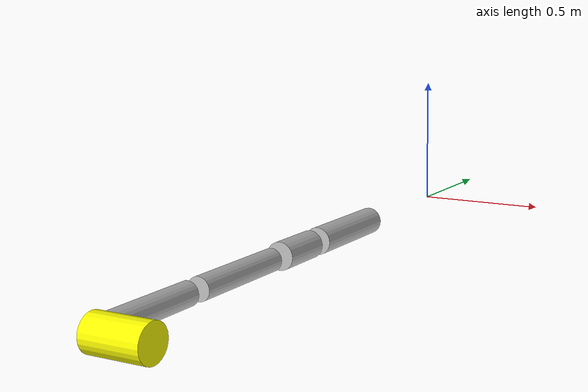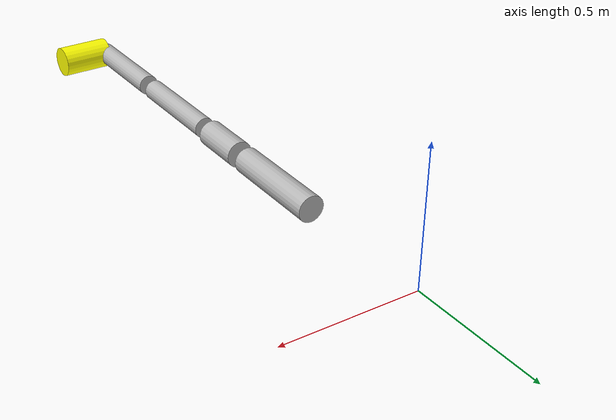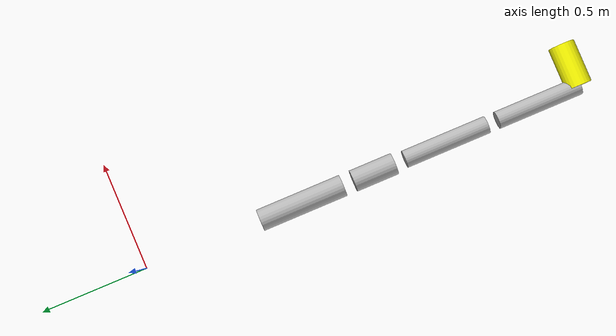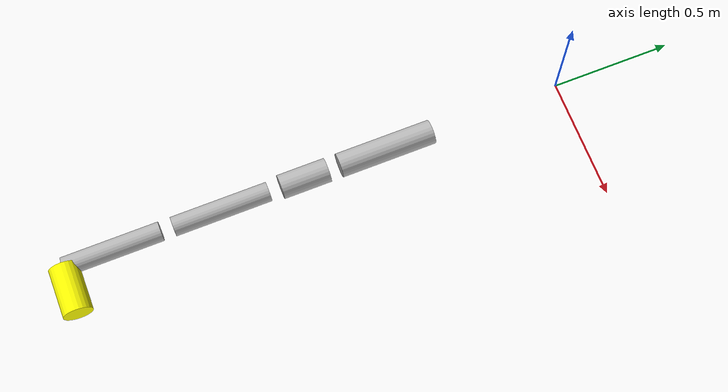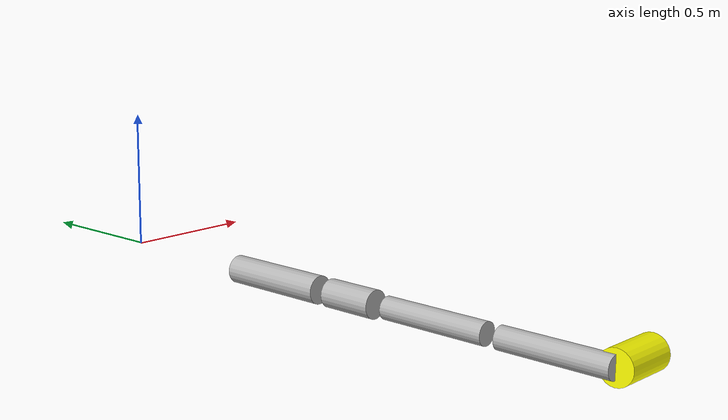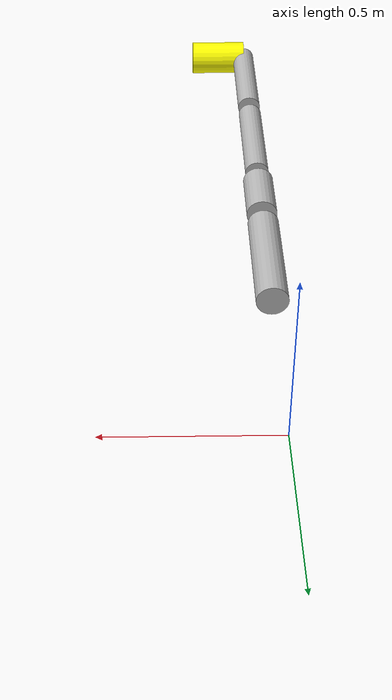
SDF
<?xml version="1.0" ?>
<sdf version="1.5">
        <model name="ostrich">
            <pose>0 -2.0 0 0 0 0</pose>
            <static>false</static>
            <link name="h_pelvis">
                <pose> 0.0 1.25 0 0 0 0</pose>
                <inertial>
                    <mass>3.52</mass>
                </inertial>
                <visual>
                    <pose>0.0 0 0.0 1.57079632679 0 0</pose>
                    <geometry>
                        <cylinder>
                            <length>0.4</length>
                            <radius>0.05</radius>
                        </cylinder>
                    </geometry>
                </visual>
                <collision>
                    <pose>0.0 0 0.0 1.57079632679 0 0</pose>
                    <geometry>
                        <cylinder>
                            <length>0.4</length>
                            <radius>0.05</radius>
                        </cylinder>
                    </geometry>
                </collision>
            </link>

            <link name="h_pelvis_aux">
                <pose> 0.0 1.25 0 0 0 0</pose>
                <inertial>
                    <mass>0.000001</mass>
                </inertial>
            </link>

            <link name="h_pelvis_aux2">
                <pose> 0.0 1.25 0 0 0 0</pose>
                <inertial>
                    <mass>0.000001</mass>
                </inertial>
            </link>

            <!-- Right Leg -->
            <link name="h_thigh">
                <pose>0.0 1.00 0.0 0.0 0.0 0.0</pose>
                <inertial>
                    <mass>3.92699082</mass>
                </inertial>
                <visual>
                    <pose>0.0 -0.1 0.0 1.57079632679 0.0 0.0</pose>
                    <geometry>
                        <cylinder>
                            <length>0.20</length>
                            <radius>0.05</radius>
                        </cylinder>
                    </geometry>
                </visual>
                <collision>
                    <pose>0.0 -0.1 0.0 1.57079632679 0.0 0.0</pose>
                    <geometry>
                        <cylinder>
                            <length>0.20</length>
                            <radius>0.05</radius>
                        </cylinder>
                    </geometry>
                </collision>
            </link>

            <link name="h_shin">
                <pose>0.0 0.75 0.0 0.0 0.0 0.0</pose>
                <inertial>
                    <mass>2.71433605</mass>
                </inertial>
                <visual>
                    <pose>0.0 -0.2 0.0 1.57079632679 0.0 0.0</pose>
                    <geometry>
                        <cylinder>
                            <length>0.4</length>
                            <radius>0.04</radius>
                        </cylinder>
                    </geometry>
                </visual>
                <collision>
                    <pose>0.0 -0.2 0.0 1.57079632679 0.0 0.0</pose>
                    <geometry>
                        <cylinder>
                            <length>0.3</length>
                            <radius>0.04</radius>
                        </cylinder>
                    </geometry>
                </collision>
            </link>

            <link name="h_foot">
                <pose>0.0 0.30 0.0 0.0 0.0 0.0</pose>
                <inertial>
                    <mass>2.71433605</mass>
                </inertial>
                <visual>
                    <pose>0.0 -0.2 0.0 1.57079632679 0.0 0.0</pose>
                    <geometry>
                        <cylinder>
                            <length>0.4</length>
                            <radius>0.04</radius>
                        </cylinder>
                    </geometry>
                </visual>
                <collision>
                    <pose>0.0 -0.2 0.0 1.57079632679 0.0 0.0</pose>
                    <geometry>
                        <cylinder>
                            <length>0.3</length>
                            <radius>0.04</radius>
                        </cylinder>
                    </geometry>
                </collision>
            </link>

            <link name="h_atoe">
                <pose>0.0 -0.1 0.0 0.0 0.0 0.0</pose>
                <inertial>
                    <mass>2.94053072</mass>
                </inertial>
                <visual>
                    <pose>0.1 0.0 0.0 0.0 1.57079632679 0.0</pose>
                    <geometry>
                        <cylinder>
                            <length>0.2</length>
                            <radius>0.06</radius>
                        </cylinder>
                    </geometry>
                    <color>1.0 1.0 0.0</color>
                    <material>
                        <diffuse>1.0 1.0 0.0</diffuse>
                    </material>
                </visual>
                <collision>
                    <pose>0.1 0.0 0.0 0.0 1.57079632679 0.0</pose>
                    <geometry>
                        <cylinder>
                            <length>0.2</length>
                            <radius>0.06</radius>
                        </cylinder>
                    </geometry>
                </collision>
            </link>

            <!-- Left Leg -->
            <link name="h_thigh_left">
                <pose>0.0 1.00 0.0 0.0 0.0 0.0</pose>
                <inertial>
                    <mass>3.92699082</mass>
                </inertial>
                <visual>
                    <pose>0.0 -0.1 0.0 1.57079632679 0.0 0.0</pose>
                    <geometry>
                        <cylinder>
                            <length>0.20</length>
                            <radius>0.05</radius>
                        </cylinder>
                    </geometry>
                    <color>1.0 0.0 1.0</color>
                    <material>
                        <diffuse>1.0 0.0 1.0</diffuse>
                    </material>

                </visual>
                <collision>
                    <pose>0.0 -0.1 0.0 1.57079632679 0.0 0.0</pose>
                    <geometry>
                        <cylinder>
                            <length>0.20</length>
                            <radius>0.05</radius>
                        </cylinder>
                    </geometry>
                </collision>
            </link>

            <link name="h_shin_left">
                <pose>0.0 0.75 0.0 0.0 0.0 0.0</pose>
                <inertial>
                    <mass>2.71433605</mass>
                </inertial>
                <visual>
                    <pose>0.0 -0.2 0.0 1.57079632679 0.0 0.0</pose>
                    <geometry>
                        <cylinder>
                            <length>0.4</length>
                            <radius>0.04</radius>
                        </cylinder>
                    </geometry>
                    <color>1.0 0.0 1.0</color>
                    <material>
                        <diffuse>1.0 0.0 1.0</diffuse>
                    </material>

                </visual>
                <collision>
                    <pose>0.0 -0.2 0.0 1.57079632679 0.0 0.0</pose>
                    <geometry>
                        <cylinder>
                            <length>0.3</length>
                            <radius>0.04</radius>
                        </cylinder>
                    </geometry>
                </collision>
            </link>

            <link name="h_foot_left">
                <pose>0.0 0.30 0.0 0.0 0.0 0.0</pose>
                <inertial>
                    <mass>2.71433605</mass>
                </inertial>
                <visual>
                    <pose>0.0 -0.2 0.0 1.57079632679 0.0 0.0</pose>
                    <geometry>
                        <cylinder>
                            <length>0.4</length>
                            <radius>0.04</radius>
                        </cylinder>
                    </geometry>
                    <color>1.0 0.0 1.0</color>
                    <material>
                        <diffuse>1.0 0.0 1.0</diffuse>
                    </material>

                </visual>
                <collision>
                    <pose>0.0 -0.2 0.0 1.57079632679 0.0 0.0</pose>
                    <geometry>
                        <cylinder>
                            <length>0.3</length>
                            <radius>0.04</radius>
                        </cylinder>
                    </geometry>
                </collision>
            </link>

            <link name="h_atoe_left">
                <pose>0.0 -0.1 0.0 0.0 0.0 0.0</pose>
                <inertial>
                    <mass>2.94053072</mass>
                </inertial>
                <visual>
                    <pose>0.1 0.0 0.0 0.0 1.57079632679 0.0</pose>
                    <geometry>
                        <cylinder>
                            <length>0.2</length>
                            <radius>0.06</radius>
                        </cylinder>
                    </geometry>
                    <color>1.0 0.0 1.0</color>
                    <material>
                        <diffuse>1.0 0.0 1.0</diffuse>
                    </material>

                </visual>
                <collision>
                    <pose>0.1 0.0 0.0 0.0 1.57079632679 0.0</pose>
                    <geometry>
                        <cylinder>
                            <length>0.2</length>
                            <radius>0.06</radius>
                        </cylinder>
                    </geometry>
                </collision>
            </link>

            <!-- JOINT: Pelvis -->
            <joint type="prismatic" name="j_pelvis_x">
                <parent>world</parent>
                <child>h_pelvis_aux2</child>
                <axis>
                      <xyz>1.0 0.0 0.0</xyz>
                </axis>
            </joint>

            <joint type="prismatic" name="j_pelvis_y">
                <parent>h_pelvis_aux2</parent>
                <child>h_pelvis_aux</child>
                <axis>
                      <xyz>0.0 1.0 0.0</xyz>
                </axis>
            </joint>

            <joint type="revolute" name="j_pelvis_rot">
                <parent>h_pelvis_aux</parent>
                <child>h_pelvis</child>
                <axis>
                      <xyz>0.0 0.0 1.0</xyz>
                </axis>
            </joint>

            <!-- JOINT: Leg -->
            <joint type="revolute" name="j_thigh">
                <pose>0.0 0.0 0.0 0.0 0.0 0.0</pose>
                <parent>h_pelvis</parent>
                <child>h_thigh</child>
                <axis>
                    <xyz>0.0 0.0 1.0</xyz>
		     <limit>
                    	<lower>-0.785</lower>
                    	<upper>1.57</upper>
                    </limit>
                    <dynamics>
                        <damping>1.0</damping>
                        <friction>0.0</friction>
                    </dynamics>
                </axis>
            </joint>

            <joint type="revolute" name="j_shin">
                <pose>0.0 0.0 0.0 0.0 0.0 0.0</pose>
                <parent>h_thigh</parent>
                <child>h_shin</child>
                <axis>
                    <xyz>0.0 0.0 1.0</xyz>
		     <limit>
                    	<lower>-2.61799</lower>
                    	<upper>0.0</upper>
                    </limit>
                    <dynamics>
                        <damping>1.0</damping>
                        <friction>0.0</friction>
                    </dynamics>
                </axis>
            </joint>

            <joint type="revolute" name="j_foot">
                <pose>0.0 0.0 0.0 0.0 0.0 0.0</pose>
                <parent>h_shin</parent>
                <child>h_foot</child>
                <axis>
                    <xyz>0.0 0.0 1.0</xyz>
		     <limit>
                    	<lower>0.0</lower>
                    	<upper>2.61799</upper>
                    </limit>
                    <dynamics>
                        <damping>1.0</damping>
                        <friction>0.0</friction>
                    </dynamics>
                </axis>
            </joint>

            <joint type="revolute" name="j_atoe">
                <pose>0.0 0.0 0.0 0.0 0.0 0.0</pose>
                <parent>h_foot</parent>
                <child>h_atoe</child>
                <axis>
                    <xyz>0.0 0.0 1.0</xyz>
    		     <limit>
                    	<lower>-1.570796</lower>
                    	<upper>1.570796</upper>
                    </limit>
                    <dynamics>
                        <damping>1.0</damping>
                        <friction>0.0</friction>
                    </dynamics>
                </axis>
            </joint>

            <!-- JOINT: Left Leg -->
            <joint type="revolute" name="j_thigh_left">
                <pose>0.0 0.0 0.0 0.0 0.0 0.0</pose>
                <parent>h_pelvis</parent>
                <child>h_thigh_left</child>
                <axis>
                    <xyz>0.0 0.0 1.0</xyz>
		     <limit>
                    	<lower>-0.785</lower>
                    	<upper>1.57</upper>
                    </limit>
                    <dynamics>
                        <damping>1.0</damping>
                        <friction>0.0</friction>
                    </dynamics>
                </axis>
            </joint>

            <joint type="revolute" name="j_shin_left">
                <pose>0.0 0.0 0.0 0.0 0.0 0.0</pose>
                <parent>h_thigh_left</parent>
                <child>h_shin_left</child>
                <axis>
                    <xyz>0.0 0.0 1.0</xyz>
		     <limit>
                    	<lower>-2.61799</lower>
                    	<upper>0.0</upper>
                    </limit>
                    <dynamics>
                        <damping>1.0</damping>
                        <friction>0.0</friction>
                    </dynamics>
                </axis>
            </joint>

            <joint type="revolute" name="j_foot_left">
                <pose>0.0 0.0 0.0 0.0 0.0 0.0</pose>
                <parent>h_shin_left</parent>
                <child>h_foot_left</child>
                <axis>
                    <xyz>0.0 0.0 1.0</xyz>
		     <limit>
                    	<lower>0.0</lower>
                    	<upper>2.61799</upper>
                    </limit>
                    <dynamics>
                        <damping>1.0</damping>
                        <friction>0.0</friction>
                    </dynamics>
                </axis>
            </joint>

            <joint type="revolute" name="j_atoe_left">
                <pose>0.0 0.0 0.0 0.0 0.0 0.0</pose>
                <parent>h_foot_left</parent>
                <child>h_atoe_left</child>
                <axis>
                    <xyz>0.0 0.0 1.0</xyz>
		     <limit>
                    	<lower>-1.570796</lower>
                    	<upper>1.570796</upper>
                    </limit>
                    <dynamics>
                        <damping>1.0</damping>
                        <friction>0.0</friction>
                    </dynamics>
                </axis>
            </joint>
        </model>
</sdf>
